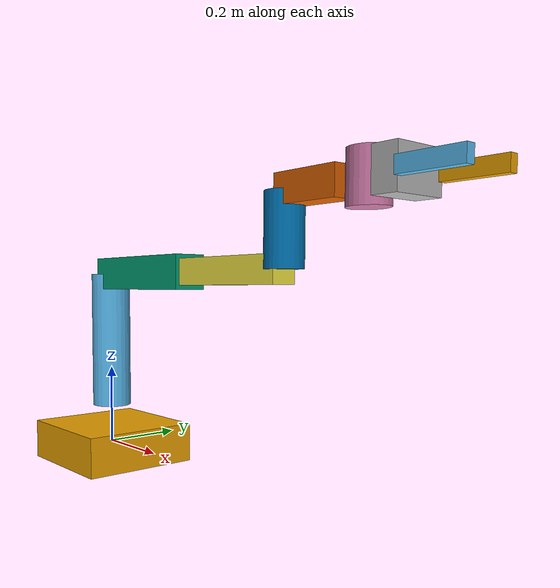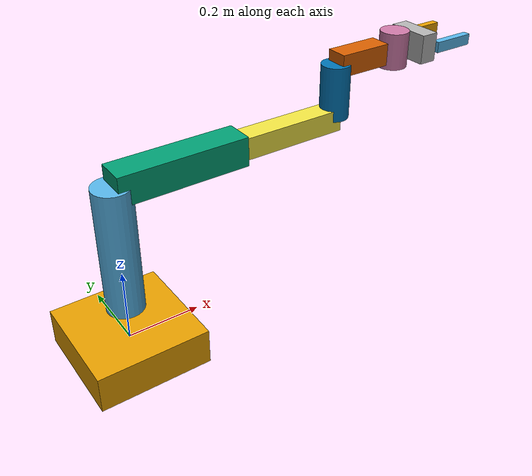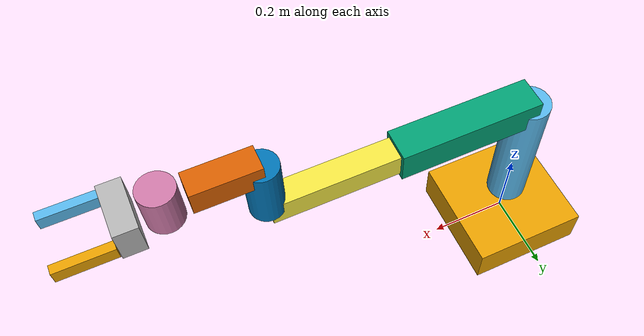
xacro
<?xml version="1.0"?>
<robot xmlns:xacro="http://www.ros.org/wiki/xacro" name="simple_6dof_arm">
    <xacro:arg name="initial_positions_file" default="initial_positions.yaml" />

    <!-- Import simple_6dof_arm urdf file -->
    <xacro:include filename="$(find simple_6dof_description)/urdf/simple_6dof_arm.urdf.xacro" />

    <!-- Import control_xacro -->
    <xacro:include filename="simple_6dof_arm.ros2_control.xacro" />

    <xacro:simple_6dof_arm_ros2_control name="FakeSystem" initial_positions_file="$(arg initial_positions_file)"/>

</robot>

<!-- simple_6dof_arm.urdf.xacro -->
<robot xmlns:xacro="http://www.ros.org/wiki/xacro"
       name="simple_6dof_arm">

  <!-- Base -->

  <link name="base_link">

    <visual>
      <geometry>
        <box size="0.3 0.3 0.1"/>
      </geometry>
    </visual>

    <collision>
      <geometry>
        <box size="0.3 0.3 0.1"/>
      </geometry>
    </collision>

  </link>

  <!-- Joint 1 Base Rotation -->

  <joint name="joint1"
         type="revolute">

    <parent link="base_link"/>
    <child link="link1"/>

    <origin xyz="0 0 0.1"/>

    <axis xyz="0 0 1"/>

    <limit
      lower="-3.14"
      upper="3.14"
      effort="20"
      velocity="1"/>

  </joint>

  <link name="link1">

    <visual>

      <origin xyz="0 0 0.175"/>

      <geometry>
        <cylinder
          radius="0.05"
          length="0.35"/>
      </geometry>

    </visual>

    <collision>

      <origin xyz="0 0 0.175"/>

      <geometry>
        <cylinder
          radius="0.05"
          length="0.35"/>
      </geometry>

    </collision>

  </link>

  <!-- Joint 2 Shoulder -->

  <joint name="joint2"
         type="revolute">

    <parent link="link1"/>
    <child link="link2"/>

    <origin xyz="0 0 0.35"/>

    <axis xyz="0 1 0"/>

    <limit
      lower="-1.8"
      upper="1.8"
      effort="20"
      velocity="1"/>

  </joint>

  <link name="link2">

    <visual>

      <origin xyz="0.175 0 0"/>

      <geometry>
        <box size="0.35 0.08 0.08"/>
      </geometry>

    </visual>

    <collision>

      <origin xyz="0.175 0 0"/>

      <geometry>
        <box size="0.35 0.08 0.08"/>
      </geometry>

    </collision>

  </link>

  <!-- Joint 3 Elbow -->

  <joint name="joint3"
         type="revolute">

    <parent link="link2"/>
    <child link="link3"/>

    <origin xyz="0.35 0 0"/>

    <axis xyz="0 1 0"/>

    <limit
      lower="-2.2"
      upper="2.2"
      effort="20"
      velocity="1"/>

  </joint>

  <link name="link3">

    <visual>

      <origin xyz="0.15 0 0"/>

      <geometry>
        <box size="0.3 0.06 0.06"/>
      </geometry>

    </visual>

    <collision>

      <origin xyz="0.15 0 0"/>

      <geometry>
        <box size="0.3 0.06 0.06"/>
      </geometry>

    </collision>

  </link>

  <!-- Joint 4 Wrist Rotate -->

  <joint name="joint4"
         type="revolute">

    <parent link="link3"/>
    <child link="link4"/>

    <origin xyz="0.3 0 0"/>

    <axis xyz="1 0 0"/>

    <limit
      lower="-3.14"
      upper="3.14"
      effort="10"
      velocity="1"/>

  </joint>

  <link name="link4">

    <visual>

      <origin xyz="0 0 0.075"/>

      <geometry>
        <cylinder
          radius="0.04"
          length="0.15"/>
      </geometry>

    </visual>

    <collision>

      <origin xyz="0 0 0.075"/>

      <geometry>
        <cylinder
          radius="0.04"
          length="0.15"/>
      </geometry>

    </collision>

  </link>

  <!-- Joint 5 Wrist Pitch -->

  <joint name="joint5"
         type="revolute">

    <parent link="link4"/>
    <child link="link5"/>

    <origin xyz="0 0 0.15"/>

    <axis xyz="0 1 0"/>

    <limit
      lower="-1.57"
      upper="1.57"
      effort="10"
      velocity="1"/>

  </joint>

  <link name="link5">

    <visual>

      <origin xyz="0.075 0 0"/>

      <geometry>
        <box size="0.15 0.06 0.06"/>
      </geometry>

    </visual>

    <collision>

      <origin xyz="0.075 0 0"/>

      <geometry>
        <box size="0.15 0.06 0.06"/>
      </geometry>

    </collision>

  </link>

  <!-- Joint 6 Tool Rotation -->

  <joint name="joint6"
         type="revolute">

    <parent link="link5"/>
    <child link="tool_link"/>

    <origin xyz="0.15 0 0"/>

    <axis xyz="1 0 0"/>

    <limit
      lower="-3.14"
      upper="3.14"
      effort="10"
      velocity="1"/>

  </joint>

  <link name="tool_link">

    <visual>

      <origin xyz="0.05 0 0"/>

      <geometry>
        <cylinder
          radius="0.04"
          length="0.1"/>
      </geometry>

    </visual>

    <collision>

      <origin xyz="0.05 0 0"/>

      <geometry>
        <cylinder
          radius="0.04"
          length="0.1"/>
      </geometry>

    </collision>

  </link>

  <!-- Gripper Base          -->

  <joint name="gripper_mount_joint" type="fixed">

    <parent link="tool_link"/>
    <child link="gripper_base"/>

    <origin xyz="0.10 0 0"/>

  </joint>

  <link name="gripper_base">

    <visual>

      <origin xyz="0.025 0 0"/>

      <geometry>
        <box size="0.05 0.12 0.08"/>
      </geometry>

    </visual>

    <collision>

      <origin xyz="0.025 0 0"/>

      <geometry>
        <box size="0.05 0.12 0.08"/>
      </geometry>

    </collision>

  </link>

  <!-- Left Finger           -->

  <joint name="left_finger_joint" type="prismatic">

    <parent link="gripper_base"/>
    <child link="left_finger"/>

    <origin xyz="0.05 0.06 0"/>

    <axis xyz="0 1 0"/>

    <limit
      lower="0.0"
      upper="0.04"
      effort="20"
      velocity="0.05"/>

  </joint>

  <link name="left_finger">

    <visual>

      <origin xyz="0.06 0 0"/>

      <geometry>
        <box size="0.12 0.02 0.03"/>
      </geometry>

    </visual>

    <collision>

      <origin xyz="0.06 0 0"/>

      <geometry>
        <box size="0.12 0.02 0.03"/>
      </geometry>

    </collision>

  </link>

  <!-- Right Finger          -->

  <joint name="right_finger_joint" type="prismatic">

    <parent link="gripper_base"/>
    <child link="right_finger"/>

    <origin xyz="0.05 -0.06 0"/>

    <axis xyz="0 -1 0"/>

    <limit
      lower="0.0"
      upper="0.04"
      effort="20"
      velocity="0.05"/>

  </joint>

  <link name="right_finger">

    <visual>

      <origin xyz="0.06 0 0"/>

      <geometry>
        <box size="0.12 0.02 0.03"/>
      </geometry>

    </visual>

    <collision>

      <origin xyz="0.06 0 0"/>

      <geometry>
        <box size="0.12 0.02 0.03"/>
      </geometry>

    </collision>

  </link>

</robot>
